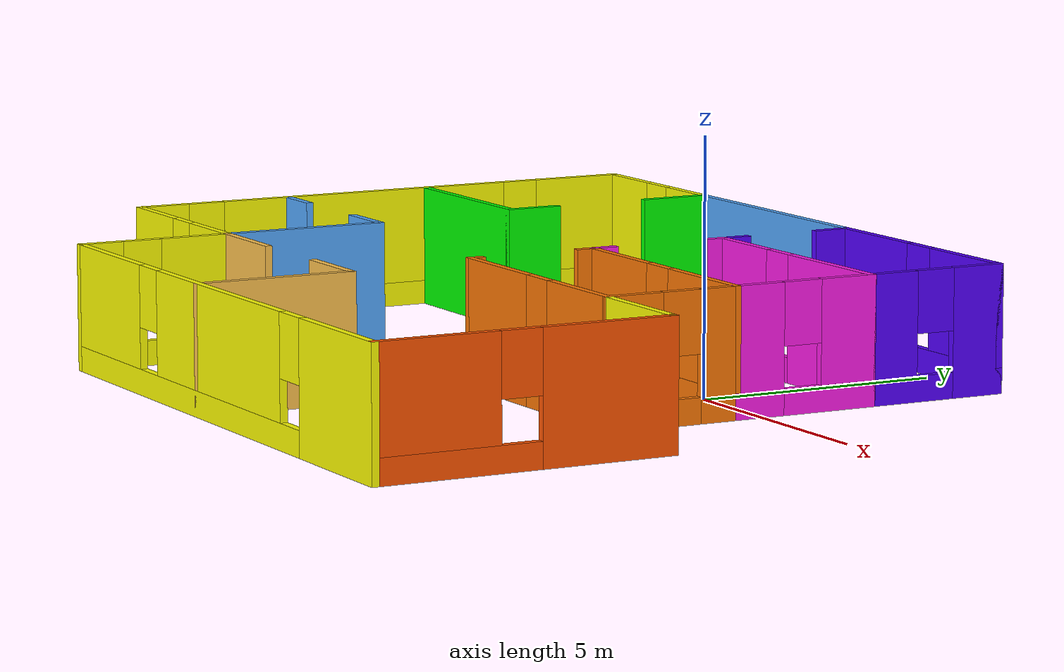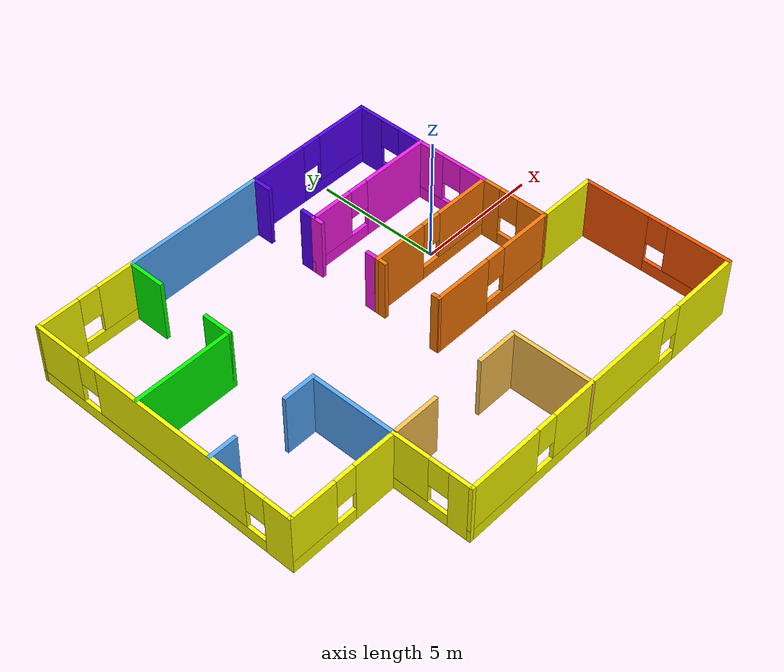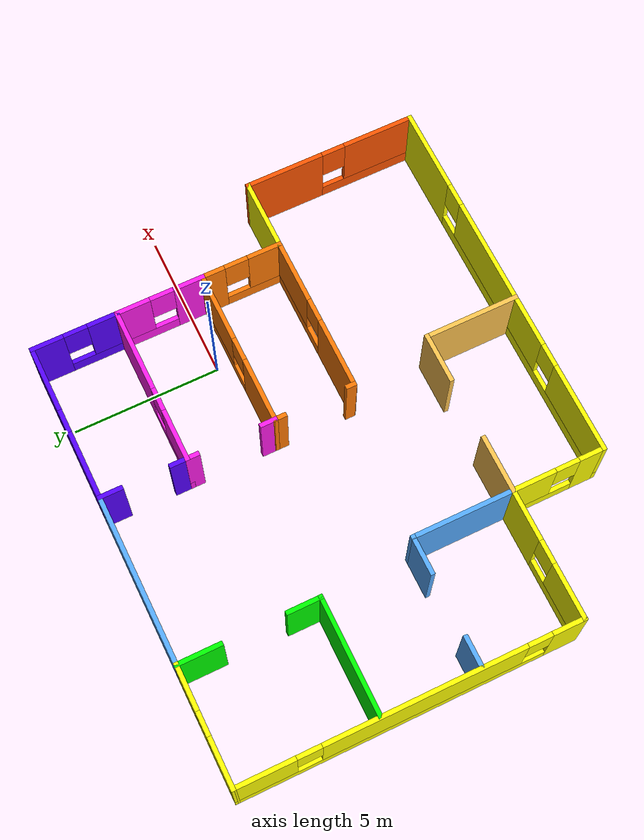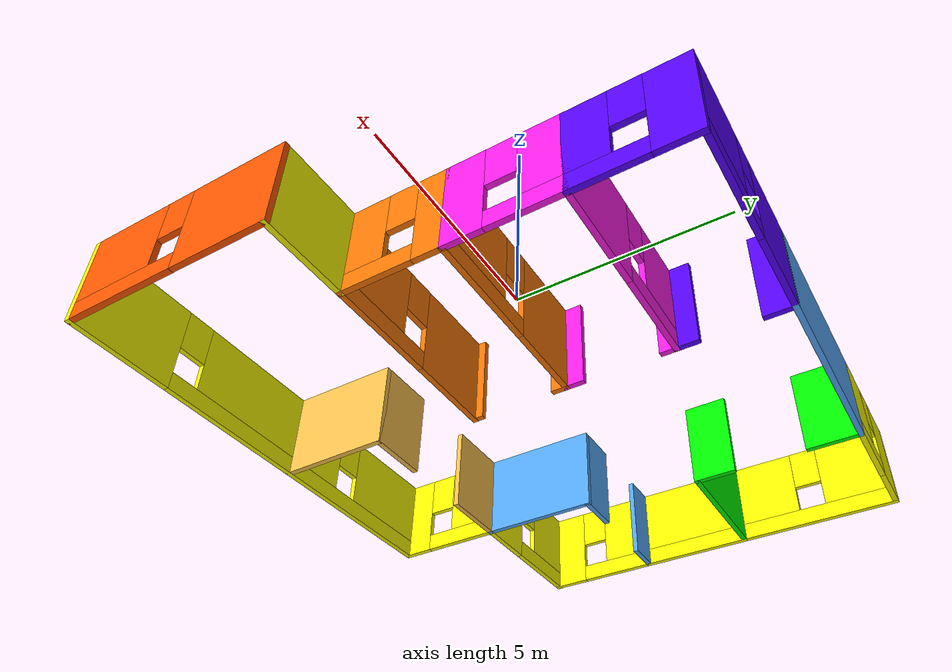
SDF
<?xml version='1.0'?>
<sdf version='1.6'>
  <model name='mybuilding'>
    <pose frame=''>-4.18089 -1.93999 0 0 -0 0</pose>
    <link name='Wall_10'>
      <pose frame=''>2.17523 -7.15011 0 0 -0 3.14159</pose>
      <visual name='Wall_10_Visual_0'>
        <pose frame=''>-5.06038 0 1.25 0 -0 0</pose>
        <geometry>
          <box>
            <size>2.87924 0.15 2.5</size>
          </box>
        </geometry>
        <material>
          <script>
            <uri>file://media/materials/scripts/gazebo.material</uri>
            <name>Gazebo/Grey</name>
          </script>
          <ambient>1 1 0 1</ambient>
        </material>
      </visual>
      <collision name='Wall_10_Collision_0'>
        <geometry>
          <box>
            <size>2.87924 0.15 2.5</size>
          </box>
        </geometry>
        <pose frame=''>-5.06038 0 1.25 0 -0 0</pose>
      </collision>
      <visual name='Wall_10_Visual_1'>
        <pose frame=''>1.43962 0 0.25 0 -0 0</pose>
        <geometry>
          <box>
            <size>10.1208 0.15 0.5</size>
          </box>
        </geometry>
        <material>
          <script>
            <uri>file://media/materials/scripts/gazebo.material</uri>
            <name>Gazebo/Grey</name>
          </script>
          <ambient>1 1 0 1</ambient>
        </material>
      </visual>
      <collision name='Wall_10_Collision_1'>
        <geometry>
          <box>
            <size>10.1208 0.15 0.5</size>
          </box>
        </geometry>
        <pose frame=''>1.43962 0 0.25 0 -0 0</pose>
      </collision>
      <visual name='Wall_10_Visual_2'>
        <pose frame=''>-0.096927 0 1.5 0 -0 0</pose>
        <geometry>
          <box>
            <size>5.44766 0.15 2</size>
          </box>
        </geometry>
        <material>
          <script>
            <uri>file://media/materials/scripts/gazebo.material</uri>
            <name>Gazebo/Grey</name>
          </script>
          <ambient>1 1 0 1</ambient>
        </material>
      </visual>
      <collision name='Wall_10_Collision_2'>
        <geometry>
          <box>
            <size>5.44766 0.15 2</size>
          </box>
        </geometry>
        <pose frame=''>-0.096927 0 1.5 0 -0 0</pose>
      </collision>
      <visual name='Wall_10_Visual_3'>
        <pose frame=''>4.96345 0 1.5 0 -0 0</pose>
        <geometry>
          <box>
            <size>3.07309 0.15 2</size>
          </box>
        </geometry>
        <material>
          <script>
            <uri>file://media/materials/scripts/gazebo.material</uri>
            <name>Gazebo/Grey</name>
          </script>
          <ambient>1 1 0 1</ambient>
        </material>
      </visual>
      <collision name='Wall_10_Collision_3'>
        <geometry>
          <box>
            <size>3.07309 0.15 2</size>
          </box>
        </geometry>
        <pose frame=''>4.96345 0 1.5 0 -0 0</pose>
      </collision>
      <visual name='Wall_10_Visual_4'>
        <pose frame=''>-3.22076 0 1.9 0 -0 0</pose>
        <geometry>
          <box>
            <size>0.8 0.15 1.2</size>
          </box>
        </geometry>
        <material>
          <script>
            <uri>file://media/materials/scripts/gazebo.material</uri>
            <name>Gazebo/Grey</name>
          </script>
          <ambient>1 1 0 1</ambient>
        </material>
      </visual>
      <collision name='Wall_10_Collision_4'>
        <geometry>
          <box>
            <size>0.8 0.15 1.2</size>
          </box>
        </geometry>
        <pose frame=''>-3.22076 0 1.9 0 -0 0</pose>
      </collision>
      <visual name='Wall_10_Visual_5'>
        <pose frame=''>3.02691 0 1.9 0 -0 0</pose>
        <geometry>
          <box>
            <size>0.8 0.15 1.2</size>
          </box>
        </geometry>
        <material>
          <script>
            <uri>file://media/materials/scripts/gazebo.material</uri>
            <name>Gazebo/Grey</name>
          </script>
          <ambient>1 1 0 1</ambient>
        </material>
      </visual>
      <collision name='Wall_10_Collision_5'>
        <geometry>
          <box>
            <size>0.8 0.15 1.2</size>
          </box>
        </geometry>
        <pose frame=''>3.02691 0 1.9 0 -0 0</pose>
      </collision>
    </link>
    <link name='Wall_11'>
      <pose frame=''>-4.24977 -5.60011 0 0 -0 1.5708</pose>
      <visual name='Wall_11_Visual_0'>
        <pose frame=''>-1.16435 0 1.25 0 -0 0</pose>
        <geometry>
          <box>
            <size>0.921292 0.15 2.5</size>
          </box>
        </geometry>
        <material>
          <script>
            <uri>file://media/materials/scripts/gazebo.material</uri>
            <name>Gazebo/Grey</name>
          </script>
          <ambient>1 1 0 1</ambient>
        </material>
      </visual>
      <collision name='Wall_11_Collision_0'>
        <geometry>
          <box>
            <size>0.921292 0.15 2.5</size>
          </box>
        </geometry>
        <pose frame=''>-1.16435 0 1.25 0 -0 0</pose>
      </collision>
      <visual name='Wall_11_Visual_1'>
        <pose frame=''>0.460646 0 0.25 0 -0 0</pose>
        <geometry>
          <box>
            <size>2.32871 0.15 0.5</size>
          </box>
        </geometry>
        <material>
          <script>
            <uri>file://media/materials/scripts/gazebo.material</uri>
            <name>Gazebo/Grey</name>
          </script>
          <ambient>1 1 0 1</ambient>
        </material>
      </visual>
      <collision name='Wall_11_Collision_1'>
        <geometry>
          <box>
            <size>2.32871 0.15 0.5</size>
          </box>
        </geometry>
        <pose frame=''>0.460646 0 0.25 0 -0 0</pose>
      </collision>
      <visual name='Wall_11_Visual_2'>
        <pose frame=''>0.860646 0 1.5 0 -0 0</pose>
        <geometry>
          <box>
            <size>1.52871 0.15 2</size>
          </box>
        </geometry>
        <material>
          <script>
            <uri>file://media/materials/scripts/gazebo.material</uri>
            <name>Gazebo/Grey</name>
          </script>
          <ambient>1 1 0 1</ambient>
        </material>
      </visual>
      <collision name='Wall_11_Collision_2'>
        <geometry>
          <box>
            <size>1.52871 0.15 2</size>
          </box>
        </geometry>
        <pose frame=''>0.860646 0 1.5 0 -0 0</pose>
      </collision>
      <visual name='Wall_11_Visual_3'>
        <pose frame=''>-0.303708 0 1.9 0 -0 0</pose>
        <geometry>
          <box>
            <size>0.8 0.15 1.2</size>
          </box>
        </geometry>
        <material>
          <script>
            <uri>file://media/materials/scripts/gazebo.material</uri>
            <name>Gazebo/Grey</name>
          </script>
          <ambient>1 1 0 1</ambient>
        </material>
      </visual>
      <collision name='Wall_11_Collision_3'>
        <geometry>
          <box>
            <size>0.8 0.15 1.2</size>
          </box>
        </geometry>
        <pose frame=''>-0.303708 0 1.9 0 -0 0</pose>
      </collision>
    </link>
    <link name='Wall_12'>
      <pose frame=''>-6.42494 -4.05006 0 0 -0 3.14157</pose>
      <visual name='Wall_12_Visual_0'>
        <pose frame=''>-1.3501 0 1.25 0 -0 0</pose>
        <geometry>
          <box>
            <size>1.7998 0.15 2.5</size>
          </box>
        </geometry>
        <material>
          <script>
            <uri>file://media/materials/scripts/gazebo.material</uri>
            <name>Gazebo/Grey</name>
          </script>
          <ambient>1 1 0 1</ambient>
        </material>
      </visual>
      <collision name='Wall_12_Collision_0'>
        <geometry>
          <box>
            <size>1.7998 0.15 2.5</size>
          </box>
        </geometry>
        <pose frame=''>-1.3501 0 1.25 0 -0 0</pose>
      </collision>
      <visual name='Wall_12_Visual_1'>
        <pose frame=''>0.8999 0 0.25 0 -0 0</pose>
        <geometry>
          <box>
            <size>2.7002 0.15 0.5</size>
          </box>
        </geometry>
        <material>
          <script>
            <uri>file://media/materials/scripts/gazebo.material</uri>
            <name>Gazebo/Grey</name>
          </script>
          <ambient>1 1 0 1</ambient>
        </material>
      </visual>
      <collision name='Wall_12_Collision_1'>
        <geometry>
          <box>
            <size>2.7002 0.15 0.5</size>
          </box>
        </geometry>
        <pose frame=''>0.8999 0 0.25 0 -0 0</pose>
      </collision>
      <visual name='Wall_12_Visual_2'>
        <pose frame=''>1.2999 0 1.5 0 -0 0</pose>
        <geometry>
          <box>
            <size>1.9002 0.15 2</size>
          </box>
        </geometry>
        <material>
          <script>
            <uri>file://media/materials/scripts/gazebo.material</uri>
            <name>Gazebo/Grey</name>
          </script>
          <ambient>1 1 0 1</ambient>
        </material>
      </visual>
      <collision name='Wall_12_Collision_2'>
        <geometry>
          <box>
            <size>1.9002 0.15 2</size>
          </box>
        </geometry>
        <pose frame=''>1.2999 0 1.5 0 -0 0</pose>
      </collision>
      <visual name='Wall_12_Visual_3'>
        <pose frame=''>-0.0502 0 1.9 0 -0 0</pose>
        <geometry>
          <box>
            <size>0.8 0.15 1.2</size>
          </box>
        </geometry>
        <material>
          <script>
            <uri>file://media/materials/scripts/gazebo.material</uri>
            <name>Gazebo/Grey</name>
          </script>
          <ambient>1 1 0 1</ambient>
        </material>
      </visual>
      <collision name='Wall_12_Collision_3'>
        <geometry>
          <box>
            <size>0.8 0.15 1.2</size>
          </box>
        </geometry>
        <pose frame=''>-0.0502 0 1.9 0 -0 0</pose>
      </collision>
    </link>
    <link name='Wall_15'>
      <pose frame=''>-8.60011 1.55 0 0 -0 1.5708</pose>
      <visual name='Wall_15_Visual_0'>
        <pose frame=''>-5.11027 0 1.25 0 -0 0</pose>
        <geometry>
          <box>
            <size>1.12946 0.15 2.5</size>
          </box>
        </geometry>
        <material>
          <script>
            <uri>file://media/materials/scripts/gazebo.material</uri>
            <name>Gazebo/Grey</name>
          </script>
          <ambient>1 1 0 1</ambient>
        </material>
      </visual>
      <collision name='Wall_15_Collision_0'>
        <geometry>
          <box>
            <size>1.12946 0.15 2.5</size>
          </box>
        </geometry>
        <pose frame=''>-5.11027 0 1.25 0 -0 0</pose>
      </collision>
      <visual name='Wall_15_Visual_1'>
        <pose frame=''>0.564732 0 0.25 0 -0 0</pose>
        <geometry>
          <box>
            <size>10.2205 0.15 0.5</size>
          </box>
        </geometry>
        <material>
          <script>
            <uri>file://media/materials/scripts/gazebo.material</uri>
            <name>Gazebo/Grey</name>
          </script>
          <ambient>1 1 0 1</ambient>
        </material>
      </visual>
      <collision name='Wall_15_Collision_1'>
        <geometry>
          <box>
            <size>10.2205 0.15 0.5</size>
          </box>
        </geometry>
        <pose frame=''>0.564732 0 0.25 0 -0 0</pose>
      </collision>
      <visual name='Wall_15_Visual_2'>
        <pose frame=''>-0.451765 0 1.5 0 -0 0</pose>
        <geometry>
          <box>
            <size>6.58754 0.15 2</size>
          </box>
        </geometry>
        <material>
          <script>
            <uri>file://media/materials/scripts/gazebo.material</uri>
            <name>Gazebo/Grey</name>
          </script>
          <ambient>1 1 0 1</ambient>
        </material>
      </visual>
      <collision name='Wall_15_Collision_2'>
        <geometry>
          <box>
            <size>6.58754 0.15 2</size>
          </box>
        </geometry>
        <pose frame=''>-0.451765 0 1.5 0 -0 0</pose>
      </collision>
      <visual name='Wall_15_Visual_3'>
        <pose frame=''>4.6585 0 1.5 0 -0 0</pose>
        <geometry>
          <box>
            <size>2.033 0.15 2</size>
          </box>
        </geometry>
        <material>
          <script>
            <uri>file://media/materials/scripts/gazebo.material</uri>
            <name>Gazebo/Grey</name>
          </script>
          <ambient>1 1 0 1</ambient>
        </material>
      </visual>
      <collision name='Wall_15_Collision_3'>
        <geometry>
          <box>
            <size>2.033 0.15 2</size>
          </box>
        </geometry>
        <pose frame=''>4.6585 0 1.5 0 -0 0</pose>
      </collision>
      <visual name='Wall_15_Visual_4'>
        <pose frame=''>-4.14553 0 1.9 0 -0 0</pose>
        <geometry>
          <box>
            <size>0.8 0.15 1.2</size>
          </box>
        </geometry>
        <material>
          <script>
            <uri>file://media/materials/scripts/gazebo.material</uri>
            <name>Gazebo/Grey</name>
          </script>
          <ambient>1 1 0 1</ambient>
        </material>
      </visual>
      <collision name='Wall_15_Collision_4'>
        <geometry>
          <box>
            <size>0.8 0.15 1.2</size>
          </box>
        </geometry>
        <pose frame=''>-4.14553 0 1.9 0 -0 0</pose>
      </collision>
      <visual name='Wall_15_Visual_5'>
        <pose frame=''>3.242 0 1.9 0 -0 0</pose>
        <geometry>
          <box>
            <size>0.8 0.15 1.2</size>
          </box>
        </geometry>
        <material>
          <script>
            <uri>file://media/materials/scripts/gazebo.material</uri>
            <name>Gazebo/Grey</name>
          </script>
          <ambient>1 1 0 1</ambient>
        </material>
      </visual>
      <collision name='Wall_15_Collision_5'>
        <geometry>
          <box>
            <size>0.8 0.15 1.2</size>
          </box>
        </geometry>
        <pose frame=''>3.242 0 1.9 0 -0 0</pose>
      </collision>
    </link>
    <link name='Wall_19'>
      <pose frame=''>3.57489 4.3 0 0 -0 3.14159</pose>
      <visual name='Wall_19_Visual_0'>
        <pose frame=''>-1.30873 0 1.25 0 -0 0</pose>
        <geometry>
          <box>
            <size>2.88253 0.15 2.5</size>
          </box>
        </geometry>
        <material>
          <script>
            <uri>file://media/materials/scripts/gazebo.material</uri>
            <name>Gazebo/Grey</name>
          </script>
          <ambient>1 0.109804 0.913725 1</ambient>
        </material>
      </visual>
      <collision name='Wall_19_Collision_0'>
        <geometry>
          <box>
            <size>2.88253 0.15 2.5</size>
          </box>
        </geometry>
        <pose frame=''>-1.30873 0 1.25 0 -0 0</pose>
      </collision>
      <visual name='Wall_19_Visual_1'>
        <pose frame=''>1.44127 0 0.25 0 -0 0</pose>
        <geometry>
          <box>
            <size>2.61747 0.15 0.5</size>
          </box>
        </geometry>
        <material>
          <script>
            <uri>file://media/materials/scripts/gazebo.material</uri>
            <name>Gazebo/Grey</name>
          </script>
          <ambient>1 0.109804 0.913725 1</ambient>
        </material>
      </visual>
      <collision name='Wall_19_Collision_1'>
        <geometry>
          <box>
            <size>2.61747 0.15 0.5</size>
          </box>
        </geometry>
        <pose frame=''>1.44127 0 0.25 0 -0 0</pose>
      </collision>
      <visual name='Wall_19_Visual_2'>
        <pose frame=''>1.84126 0 1.5 0 -0 0</pose>
        <geometry>
          <box>
            <size>1.81747 0.15 2</size>
          </box>
        </geometry>
        <material>
          <script>
            <uri>file://media/materials/scripts/gazebo.material</uri>
            <name>Gazebo/Grey</name>
          </script>
          <ambient>1 0.109804 0.913725 1</ambient>
        </material>
      </visual>
      <collision name='Wall_19_Collision_2'>
        <geometry>
          <box>
            <size>1.81747 0.15 2</size>
          </box>
        </geometry>
        <pose frame=''>1.84126 0 1.5 0 -0 0</pose>
      </collision>
      <visual name='Wall_19_Visual_3'>
        <pose frame=''>0.53253 0 1.9 0 -0 0</pose>
        <geometry>
          <box>
            <size>0.8 0.15 1.2</size>
          </box>
        </geometry>
        <material>
          <script>
            <uri>file://media/materials/scripts/gazebo.material</uri>
            <name>Gazebo/Grey</name>
          </script>
          <ambient>1 0.109804 0.913725 1</ambient>
        </material>
      </visual>
      <collision name='Wall_19_Collision_3'>
        <geometry>
          <box>
            <size>0.8 0.15 1.2</size>
          </box>
        </geometry>
        <pose frame=''>0.53253 0 1.9 0 -0 0</pose>
      </collision>
    </link>
    <link name='Wall_21'>
      <pose frame=''>3.57523 -1.30011 0 0 -0 0</pose>
      <visual name='Wall_21_Visual_0'>
        <pose frame=''>-1.51945 0 1.25 0 -0 0</pose>
        <geometry>
          <box>
            <size>2.4611 0.15 2.5</size>
          </box>
        </geometry>
        <material>
          <script>
            <uri>file://media/materials/scripts/gazebo.material</uri>
            <name>Gazebo/Grey</name>
          </script>
          <ambient>0.996078 0.47451 0.0196078 1</ambient>
        </material>
      </visual>
      <collision name='Wall_21_Collision_0'>
        <geometry>
          <box>
            <size>2.4611 0.15 2.5</size>
          </box>
        </geometry>
        <pose frame=''>-1.51945 0 1.25 0 -0 0</pose>
      </collision>
      <visual name='Wall_21_Visual_1'>
        <pose frame=''>1.23055 0 0.25 0 -0 0</pose>
        <geometry>
          <box>
            <size>3.0389 0.15 0.5</size>
          </box>
        </geometry>
        <material>
          <script>
            <uri>file://media/materials/scripts/gazebo.material</uri>
            <name>Gazebo/Grey</name>
          </script>
          <ambient>0.996078 0.47451 0.0196078 1</ambient>
        </material>
      </visual>
      <collision name='Wall_21_Collision_1'>
        <geometry>
          <box>
            <size>3.0389 0.15 0.5</size>
          </box>
        </geometry>
        <pose frame=''>1.23055 0 0.25 0 -0 0</pose>
      </collision>
      <visual name='Wall_21_Visual_2'>
        <pose frame=''>1.63055 0 1.5 0 -0 0</pose>
        <geometry>
          <box>
            <size>2.23889 0.15 2</size>
          </box>
        </geometry>
        <material>
          <script>
            <uri>file://media/materials/scripts/gazebo.material</uri>
            <name>Gazebo/Grey</name>
          </script>
          <ambient>0.996078 0.47451 0.0196078 1</ambient>
        </material>
      </visual>
      <collision name='Wall_21_Collision_2'>
        <geometry>
          <box>
            <size>2.23889 0.15 2</size>
          </box>
        </geometry>
        <pose frame=''>1.63055 0 1.5 0 -0 0</pose>
      </collision>
      <visual name='Wall_21_Visual_3'>
        <pose frame=''>0.111105 0 1.9 0 -0 0</pose>
        <geometry>
          <box>
            <size>0.8 0.15 1.2</size>
          </box>
        </geometry>
        <material>
          <script>
            <uri>file://media/materials/scripts/gazebo.material</uri>
            <name>Gazebo/Grey</name>
          </script>
          <ambient>0.996078 0.47451 0.0196078 1</ambient>
        </material>
      </visual>
      <collision name='Wall_21_Collision_3'>
        <geometry>
          <box>
            <size>0.8 0.15 1.2</size>
          </box>
        </geometry>
        <pose frame=''>0.111105 0 1.9 0 -0 0</pose>
      </collision>
    </link>
    <link name='Wall_23'>
      <pose frame=''>3.57489 1.37699 0 0 -0 0</pose>
      <visual name='Wall_23_Visual_0'>
        <pose frame=''>-1.61518 0 1.25 0 -0 0</pose>
        <geometry>
          <box>
            <size>2.26965 0.15 2.5</size>
          </box>
        </geometry>
        <material>
          <script>
            <uri>file://media/materials/scripts/gazebo.material</uri>
            <name>Gazebo/Grey</name>
          </script>
          <ambient>0.996078 0.47451 0.0196078 1</ambient>
        </material>
      </visual>
      <collision name='Wall_23_Collision_0'>
        <geometry>
          <box>
            <size>2.26965 0.15 2.5</size>
          </box>
        </geometry>
        <pose frame=''>-1.61518 0 1.25 0 -0 0</pose>
      </collision>
      <visual name='Wall_23_Visual_1'>
        <pose frame=''>1.13482 0 0.25 0 -0 0</pose>
        <geometry>
          <box>
            <size>3.23035 0.15 0.5</size>
          </box>
        </geometry>
        <material>
          <script>
            <uri>file://media/materials/scripts/gazebo.material</uri>
            <name>Gazebo/Grey</name>
          </script>
          <ambient>0.996078 0.47451 0.0196078 1</ambient>
        </material>
      </visual>
      <collision name='Wall_23_Collision_1'>
        <geometry>
          <box>
            <size>3.23035 0.15 0.5</size>
          </box>
        </geometry>
        <pose frame=''>1.13482 0 0.25 0 -0 0</pose>
      </collision>
      <visual name='Wall_23_Visual_2'>
        <pose frame=''>1.53483 0 1.5 0 -0 0</pose>
        <geometry>
          <box>
            <size>2.43035 0.15 2</size>
          </box>
        </geometry>
        <material>
          <script>
            <uri>file://media/materials/scripts/gazebo.material</uri>
            <name>Gazebo/Grey</name>
          </script>
          <ambient>0.996078 0.47451 0.0196078 1</ambient>
        </material>
      </visual>
      <collision name='Wall_23_Collision_2'>
        <geometry>
          <box>
            <size>2.43035 0.15 2</size>
          </box>
        </geometry>
        <pose frame=''>1.53483 0 1.5 0 -0 0</pose>
      </collision>
      <visual name='Wall_23_Visual_3'>
        <pose frame=''>-0.080349 0 1.9 0 -0 0</pose>
        <geometry>
          <box>
            <size>0.8 0.15 1.2</size>
          </box>
        </geometry>
        <material>
          <script>
            <uri>file://media/materials/scripts/gazebo.material</uri>
            <name>Gazebo/Grey</name>
          </script>
          <ambient>0.996078 0.47451 0.0196078 1</ambient>
        </material>
      </visual>
      <collision name='Wall_23_Collision_3'>
        <geometry>
          <box>
            <size>0.8 0.15 1.2</size>
          </box>
        </geometry>
        <pose frame=''>-0.080349 0 1.9 0 -0 0</pose>
      </collision>
    </link>
    <link name='Wall_25'>
      <collision name='Wall_25_Collision'>
        <geometry>
          <box>
            <size>3.5 0.15 2.5</size>
          </box>
        </geometry>
        <pose frame=''>0 0 1.25 0 -0 0</pose>
      </collision>
      <visual name='Wall_25_Visual'>
        <pose frame=''>0 0 1.25 0 -0 0</pose>
        <geometry>
          <box>
            <size>3.5 0.15 2.5</size>
          </box>
        </geometry>
        <material>
          <script>
            <uri>file://media/materials/scripts/gazebo.material</uri>
            <name>Gazebo/Grey</name>
          </script>
          <ambient>0.333333 0.666667 1 1</ambient>
        </material>
      </visual>
      <pose frame=''>-4.24977 -2.37511 0 0 -0 1.5708</pose>
    </link>
    <link name='Wall_26'>
      <pose frame=''>-6.42478 -0.700112 0 0 -0 3.14159</pose>
      <visual name='Wall_26_Visual_0'>
        <pose frame=''>-1.5717 0 1.25 0 -0 0</pose>
        <geometry>
          <box>
            <size>1.35659 0.15 2.5</size>
          </box>
        </geometry>
        <material>
          <script>
            <uri>file://media/materials/scripts/gazebo.material</uri>
            <name>Gazebo/Grey</name>
          </script>
          <ambient>0.333333 0.666667 1 1</ambient>
        </material>
      </visual>
      <collision name='Wall_26_Collision_0'>
        <geometry>
          <box>
            <size>1.35659 0.15 2.5</size>
          </box>
        </geometry>
        <pose frame=''>-1.5717 0 1.25 0 -0 0</pose>
      </collision>
      <visual name='Wall_26_Visual_1'>
        <pose frame=''>1.6783 0 1.25 0 -0 0</pose>
        <geometry>
          <box>
            <size>1.14341 0.15 2.5</size>
          </box>
        </geometry>
        <material>
          <script>
            <uri>file://media/materials/scripts/gazebo.material</uri>
            <name>Gazebo/Grey</name>
          </script>
          <ambient>0.333333 0.666667 1 1</ambient>
        </material>
      </visual>
      <collision name='Wall_26_Collision_1'>
        <geometry>
          <box>
            <size>1.14341 0.15 2.5</size>
          </box>
        </geometry>
        <pose frame=''>1.6783 0 1.25 0 -0 0</pose>
      </collision>
    </link>
    <link name='Wall_32'>
      <collision name='Wall_32_Collision'>
        <geometry>
          <box>
            <size>4 0.15 2.5</size>
          </box>
        </geometry>
        <pose frame=''>0 0 1.25 0 -0 0</pose>
      </collision>
      <visual name='Wall_32_Visual'>
        <pose frame=''>0 0 1.25 0 -0 0</pose>
        <geometry>
          <box>
            <size>4 0.15 2.5</size>
          </box>
        </geometry>
        <material>
          <script>
            <uri>file://media/materials/scripts/gazebo.material</uri>
            <name>Gazebo/Grey</name>
          </script>
          <ambient>0 1 0 1</ambient>
        </material>
      </visual>
      <pose frame=''>-6.63784 2.54388 0 0 -0 0</pose>
    </link>
    <link name='Wall_39'>
      <pose frame=''>-4.71284 4.84388 0 0 -0 1.5708</pose>
      <visual name='Wall_39_Visual_0'>
        <pose frame=''>-1.77148 0 1.25 0 -0 0</pose>
        <geometry>
          <box>
            <size>1.20704 0.15 2.5</size>
          </box>
        </geometry>
        <material>
          <script>
            <uri>file://media/materials/scripts/gazebo.material</uri>
            <name>Gazebo/Grey</name>
          </script>
          <ambient>0 1 0 1</ambient>
        </material>
      </visual>
      <collision name='Wall_39_Collision_0'>
        <geometry>
          <box>
            <size>1.20704 0.15 2.5</size>
          </box>
        </geometry>
        <pose frame=''>-1.77148 0 1.25 0 -0 0</pose>
      </collision>
      <visual name='Wall_39_Visual_1'>
        <pose frame=''>1.60352 0 1.25 0 -0 0</pose>
        <geometry>
          <box>
            <size>1.54296 0.15 2.5</size>
          </box>
        </geometry>
        <material>
          <script>
            <uri>file://media/materials/scripts/gazebo.material</uri>
            <name>Gazebo/Grey</name>
          </script>
          <ambient>0 1 0 1</ambient>
        </material>
      </visual>
      <collision name='Wall_39_Collision_1'>
        <geometry>
          <box>
            <size>1.54296 0.15 2.5</size>
          </box>
        </geometry>
        <pose frame=''>1.60352 0 1.25 0 -0 0</pose>
      </collision>
    </link>
    <link name='Wall_41'>
      <pose frame=''>0.899892 5.72499 0 0 -0 1.5708</pose>
      <visual name='Wall_41_Visual_0'>
        <pose frame=''>-1.16676 0 1.25 0 -0 0</pose>
        <geometry>
          <box>
            <size>0.666482 0.15 2.5</size>
          </box>
        </geometry>
        <material>
          <script>
            <uri>file://media/materials/scripts/gazebo.material</uri>
            <name>Gazebo/Grey</name>
          </script>
          <ambient>0.333333 0 1 1</ambient>
        </material>
      </visual>
      <collision name='Wall_41_Collision_0'>
        <geometry>
          <box>
            <size>0.666482 0.15 2.5</size>
          </box>
        </geometry>
        <pose frame=''>-1.16676 0 1.25 0 -0 0</pose>
      </collision>
      <visual name='Wall_41_Visual_1'>
        <pose frame=''>1.08324 0 1.25 0 -0 0</pose>
        <geometry>
          <box>
            <size>0.833518 0.15 2.5</size>
          </box>
        </geometry>
        <material>
          <script>
            <uri>file://media/materials/scripts/gazebo.material</uri>
            <name>Gazebo/Grey</name>
          </script>
          <ambient>0.333333 0 1 1</ambient>
        </material>
      </visual>
      <collision name='Wall_41_Collision_1'>
        <geometry>
          <box>
            <size>0.833518 0.15 2.5</size>
          </box>
        </geometry>
        <pose frame=''>1.08324 0 1.25 0 -0 0</pose>
      </collision>
    </link>
    <link name='Wall_47'>
      <pose frame=''>-6.65647 7.14694 0 0 0 -0.001573</pose>
      <visual name='Wall_47_Visual_0'>
        <pose frame=''>-1.17383 0 1.25 0 -0 0</pose>
        <geometry>
          <box>
            <size>1.68962 0.15 2.5</size>
          </box>
        </geometry>
        <material>
          <script>
            <uri>file://media/materials/scripts/gazebo.material</uri>
            <name>Gazebo/Grey</name>
          </script>
          <ambient>1 1 0 1</ambient>
        </material>
      </visual>
      <collision name='Wall_47_Collision_0'>
        <geometry>
          <box>
            <size>1.68962 0.15 2.5</size>
          </box>
        </geometry>
        <pose frame=''>-1.17383 0 1.25 0 -0 0</pose>
      </collision>
      <visual name='Wall_47_Visual_1'>
        <pose frame=''>0.844811 0 0.25 0 -0 0</pose>
        <geometry>
          <box>
            <size>2.34766 0.15 0.5</size>
          </box>
        </geometry>
        <material>
          <script>
            <uri>file://media/materials/scripts/gazebo.material</uri>
            <name>Gazebo/Grey</name>
          </script>
          <ambient>1 1 0 1</ambient>
        </material>
      </visual>
      <collision name='Wall_47_Collision_1'>
        <geometry>
          <box>
            <size>2.34766 0.15 0.5</size>
          </box>
        </geometry>
        <pose frame=''>0.844811 0 0.25 0 -0 0</pose>
      </collision>
      <visual name='Wall_47_Visual_2'>
        <pose frame=''>1.24481 0 1.5 0 -0 0</pose>
        <geometry>
          <box>
            <size>1.54766 0.15 2</size>
          </box>
        </geometry>
        <material>
          <script>
            <uri>file://media/materials/scripts/gazebo.material</uri>
            <name>Gazebo/Grey</name>
          </script>
          <ambient>1 1 0 1</ambient>
        </material>
      </visual>
      <collision name='Wall_47_Collision_2'>
        <geometry>
          <box>
            <size>1.54766 0.15 2</size>
          </box>
        </geometry>
        <pose frame=''>1.24481 0 1.5 0 -0 0</pose>
      </collision>
      <visual name='Wall_47_Visual_3'>
        <pose frame=''>0.070983 0 1.9 0 -0 0</pose>
        <geometry>
          <box>
            <size>0.8 0.15 1.2</size>
          </box>
        </geometry>
        <material>
          <script>
            <uri>file://media/materials/scripts/gazebo.material</uri>
            <name>Gazebo/Grey</name>
          </script>
          <ambient>1 1 0 1</ambient>
        </material>
      </visual>
      <collision name='Wall_47_Collision_3'>
        <geometry>
          <box>
            <size>0.8 0.15 1.2</size>
          </box>
        </geometry>
        <pose frame=''>0.070983 0 1.9 0 -0 0</pose>
      </collision>
    </link>
    <link name='Wall_48'>
      <collision name='Wall_48_Collision'>
        <geometry>
          <box>
            <size>5.76306 0.15 2.5</size>
          </box>
        </geometry>
        <pose frame=''>0 0 1.25 0 -0 0</pose>
      </collision>
      <visual name='Wall_48_Visual'>
        <pose frame=''>0 0 1.25 0 -0 0</pose>
        <geometry>
          <box>
            <size>5.76306 0.15 2.5</size>
          </box>
        </geometry>
        <material>
          <script>
            <uri>file://media/materials/scripts/gazebo.material</uri>
            <name>Gazebo/Grey</name>
          </script>
          <ambient>0.333333 0.666667 1 1</ambient>
        </material>
      </visual>
      <pose frame=''>-1.90647 7.14694 0 0 -0 0.001089</pose>
    </link>
    <link name='Wall_52'>
      <pose frame=''>3.57489 7.14999 0 0 -0 0</pose>
      <visual name='Wall_52_Visual_0'>
        <pose frame=''>-1.55443 0 1.25 0 -0 0</pose>
        <geometry>
          <box>
            <size>2.39113 0.15 2.5</size>
          </box>
        </geometry>
        <material>
          <script>
            <uri>file://media/materials/scripts/gazebo.material</uri>
            <name>Gazebo/Grey</name>
          </script>
          <ambient>0.333333 0 1 1</ambient>
        </material>
      </visual>
      <collision name='Wall_52_Collision_0'>
        <geometry>
          <box>
            <size>2.39113 0.15 2.5</size>
          </box>
        </geometry>
        <pose frame=''>-1.55443 0 1.25 0 -0 0</pose>
      </collision>
      <visual name='Wall_52_Visual_1'>
        <pose frame=''>1.19557 0 0.25 0 -0 0</pose>
        <geometry>
          <box>
            <size>3.10887 0.15 0.5</size>
          </box>
        </geometry>
        <material>
          <script>
            <uri>file://media/materials/scripts/gazebo.material</uri>
            <name>Gazebo/Grey</name>
          </script>
          <ambient>0.333333 0 1 1</ambient>
        </material>
      </visual>
      <collision name='Wall_52_Collision_1'>
        <geometry>
          <box>
            <size>3.10887 0.15 0.5</size>
          </box>
        </geometry>
        <pose frame=''>1.19557 0 0.25 0 -0 0</pose>
      </collision>
      <visual name='Wall_52_Visual_2'>
        <pose frame=''>1.59557 0 1.5 0 -0 0</pose>
        <geometry>
          <box>
            <size>2.30887 0.15 2</size>
          </box>
        </geometry>
        <material>
          <script>
            <uri>file://media/materials/scripts/gazebo.material</uri>
            <name>Gazebo/Grey</name>
          </script>
          <ambient>0.333333 0 1 1</ambient>
        </material>
      </visual>
      <collision name='Wall_52_Collision_2'>
        <geometry>
          <box>
            <size>2.30887 0.15 2</size>
          </box>
        </geometry>
        <pose frame=''>1.59557 0 1.5 0 -0 0</pose>
      </collision>
      <visual name='Wall_52_Visual_3'>
        <pose frame=''>0.041132 0 1.9 0 -0 0</pose>
        <geometry>
          <box>
            <size>0.8 0.15 1.2</size>
          </box>
        </geometry>
        <material>
          <script>
            <uri>file://media/materials/scripts/gazebo.material</uri>
            <name>Gazebo/Grey</name>
          </script>
          <ambient>0.333333 0 1 1</ambient>
        </material>
      </visual>
      <collision name='Wall_52_Collision_3'>
        <geometry>
          <box>
            <size>0.8 0.15 1.2</size>
          </box>
        </geometry>
        <pose frame=''>0.041132 0 1.9 0 -0 0</pose>
      </collision>
    </link>
    <link name='Wall_54'>
      <pose frame=''>6.24989 5.72499 0 0 0 -1.5708</pose>
      <visual name='Wall_54_Visual_0'>
        <pose frame=''>-0.940826 0 1.25 0 -0 0</pose>
        <geometry>
          <box>
            <size>1.11835 0.15 2.5</size>
          </box>
        </geometry>
        <material>
          <script>
            <uri>file://media/materials/scripts/gazebo.material</uri>
            <name>Gazebo/Grey</name>
          </script>
          <ambient>0.333333 0 1 1</ambient>
        </material>
      </visual>
      <collision name='Wall_54_Collision_0'>
        <geometry>
          <box>
            <size>1.11835 0.15 2.5</size>
          </box>
        </geometry>
        <pose frame=''>-0.940826 0 1.25 0 -0 0</pose>
      </collision>
      <visual name='Wall_54_Visual_1'>
        <pose frame=''>0.559174 0 0.25 0 -0 0</pose>
        <geometry>
          <box>
            <size>1.88165 0.15 0.5</size>
          </box>
        </geometry>
        <material>
          <script>
            <uri>file://media/materials/scripts/gazebo.material</uri>
            <name>Gazebo/Grey</name>
          </script>
          <ambient>0.333333 0 1 1</ambient>
        </material>
      </visual>
      <collision name='Wall_54_Collision_1'>
        <geometry>
          <box>
            <size>1.88165 0.15 0.5</size>
          </box>
        </geometry>
        <pose frame=''>0.559174 0 0.25 0 -0 0</pose>
      </collision>
      <visual name='Wall_54_Visual_2'>
        <pose frame=''>0.959174 0 1.5 0 -0 0</pose>
        <geometry>
          <box>
            <size>1.08165 0.15 2</size>
          </box>
        </geometry>
        <material>
          <script>
            <uri>file://media/materials/scripts/gazebo.material</uri>
            <name>Gazebo/Grey</name>
          </script>
          <ambient>0.333333 0 1 1</ambient>
        </material>
      </visual>
      <collision name='Wall_54_Collision_2'>
        <geometry>
          <box>
            <size>1.08165 0.15 2</size>
          </box>
        </geometry>
        <pose frame=''>0.959174 0 1.5 0 -0 0</pose>
      </collision>
      <visual name='Wall_54_Visual_3'>
        <pose frame=''>0.018348 0 1.9 0 -0 0</pose>
        <geometry>
          <box>
            <size>0.8 0.15 1.2</size>
          </box>
        </geometry>
        <material>
          <script>
            <uri>file://media/materials/scripts/gazebo.material</uri>
            <name>Gazebo/Grey</name>
          </script>
          <ambient>0.333333 0 1 1</ambient>
        </material>
      </visual>
      <collision name='Wall_54_Collision_3'>
        <geometry>
          <box>
            <size>0.8 0.15 1.2</size>
          </box>
        </geometry>
        <pose frame=''>0.018348 0 1.9 0 -0 0</pose>
      </collision>
    </link>
    <link name='Wall_59'>
      <pose frame=''>6.24989 2.83849 0 0 -0 1.5708</pose>
      <visual name='Wall_59_Visual_0'>
        <pose frame=''>-0.994092 0 1.25 0 -0 0</pose>
        <geometry>
          <box>
            <size>1.08482 0.15 2.5</size>
          </box>
        </geometry>
        <material>
          <script>
            <uri>file://media/materials/scripts/gazebo.material</uri>
            <name>Gazebo/Grey</name>
          </script>
          <ambient>1 0.109804 0.913725 1</ambient>
        </material>
      </visual>
      <collision name='Wall_59_Collision_0'>
        <geometry>
          <box>
            <size>1.08482 0.15 2.5</size>
          </box>
        </geometry>
        <pose frame=''>-0.994092 0 1.25 0 -0 0</pose>
      </collision>
      <visual name='Wall_59_Visual_1'>
        <pose frame=''>0.542408 0 0.25 0 -0 0</pose>
        <geometry>
          <box>
            <size>1.98819 0.15 0.5</size>
          </box>
        </geometry>
        <material>
          <script>
            <uri>file://media/materials/scripts/gazebo.material</uri>
            <name>Gazebo/Grey</name>
          </script>
          <ambient>1 0.109804 0.913725 1</ambient>
        </material>
      </visual>
      <collision name='Wall_59_Collision_1'>
        <geometry>
          <box>
            <size>1.98819 0.15 0.5</size>
          </box>
        </geometry>
        <pose frame=''>0.542408 0 0.25 0 -0 0</pose>
      </collision>
      <visual name='Wall_59_Visual_2'>
        <pose frame=''>0.942408 0 1.5 0 -0 0</pose>
        <geometry>
          <box>
            <size>1.18819 0.15 2</size>
          </box>
        </geometry>
        <material>
          <script>
            <uri>file://media/materials/scripts/gazebo.material</uri>
            <name>Gazebo/Grey</name>
          </script>
          <ambient>1 0.109804 0.913725 1</ambient>
        </material>
      </visual>
      <collision name='Wall_59_Collision_2'>
        <geometry>
          <box>
            <size>1.18819 0.15 2</size>
          </box>
        </geometry>
        <pose frame=''>0.942408 0 1.5 0 -0 0</pose>
      </collision>
      <visual name='Wall_59_Visual_3'>
        <pose frame=''>-0.051685 0 1.9 0 -0 0</pose>
        <geometry>
          <box>
            <size>0.8 0.15 1.2</size>
          </box>
        </geometry>
        <material>
          <script>
            <uri>file://media/materials/scripts/gazebo.material</uri>
            <name>Gazebo/Grey</name>
          </script>
          <ambient>1 0.109804 0.913725 1</ambient>
        </material>
      </visual>
      <collision name='Wall_59_Collision_3'>
        <geometry>
          <box>
            <size>0.8 0.15 1.2</size>
          </box>
        </geometry>
        <pose frame=''>-0.051685 0 1.9 0 -0 0</pose>
      </collision>
    </link>
    <link name='Wall_61'>
      <pose frame=''>6.25006 0.038441 0 0 0 -1.57067</pose>
      <visual name='Wall_61_Visual_0'>
        <pose frame=''>-0.996947 0 1.25 0 -0 0</pose>
        <geometry>
          <box>
            <size>0.833213 0.15 2.5</size>
          </box>
        </geometry>
        <material>
          <script>
            <uri>file://media/materials/scripts/gazebo.material</uri>
            <name>Gazebo/Grey</name>
          </script>
          <ambient>0.996078 0.47451 0.0196078 1</ambient>
        </material>
      </visual>
      <collision name='Wall_61_Collision_0'>
        <geometry>
          <box>
            <size>0.833213 0.15 2.5</size>
          </box>
        </geometry>
        <pose frame=''>-0.996947 0 1.25 0 -0 0</pose>
      </collision>
      <visual name='Wall_61_Visual_1'>
        <pose frame=''>0.416607 0 0.25 0 -0 0</pose>
        <geometry>
          <box>
            <size>1.99389 0.15 0.5</size>
          </box>
        </geometry>
        <material>
          <script>
            <uri>file://media/materials/scripts/gazebo.material</uri>
            <name>Gazebo/Grey</name>
          </script>
          <ambient>0.996078 0.47451 0.0196078 1</ambient>
        </material>
      </visual>
      <collision name='Wall_61_Collision_1'>
        <geometry>
          <box>
            <size>1.99389 0.15 0.5</size>
          </box>
        </geometry>
        <pose frame=''>0.416607 0 0.25 0 -0 0</pose>
      </collision>
      <visual name='Wall_61_Visual_2'>
        <pose frame=''>0.816607 0 1.5 0 -0 0</pose>
        <geometry>
          <box>
            <size>1.19389 0.15 2</size>
          </box>
        </geometry>
        <material>
          <script>
            <uri>file://media/materials/scripts/gazebo.material</uri>
            <name>Gazebo/Grey</name>
          </script>
          <ambient>0.996078 0.47451 0.0196078 1</ambient>
        </material>
      </visual>
      <collision name='Wall_61_Collision_2'>
        <geometry>
          <box>
            <size>1.19389 0.15 2</size>
          </box>
        </geometry>
        <pose frame=''>0.816607 0 1.5 0 -0 0</pose>
      </collision>
      <visual name='Wall_61_Visual_3'>
        <pose frame=''>-0.18034 0 1.9 0 -0 0</pose>
        <geometry>
          <box>
            <size>0.8 0.15 1.2</size>
          </box>
        </geometry>
        <material>
          <script>
            <uri>file://media/materials/scripts/gazebo.material</uri>
            <name>Gazebo/Grey</name>
          </script>
          <ambient>0.996078 0.47451 0.0196078 1</ambient>
        </material>
      </visual>
      <collision name='Wall_61_Collision_3'>
        <geometry>
          <box>
            <size>0.8 0.15 1.2</size>
          </box>
        </geometry>
        <pose frame=''>-0.18034 0 1.9 0 -0 0</pose>
      </collision>
    </link>
    <link name='Wall_63'>
      <pose frame=''>0.899892 2.83849 0 0 -0 1.5708</pose>
      <visual name='Wall_63_Visual_0'>
        <pose frame=''>-1.24202 0 1.25 0 -0 0</pose>
        <geometry>
          <box>
            <size>0.588959 0.15 2.5</size>
          </box>
        </geometry>
        <material>
          <script>
            <uri>file://media/materials/scripts/gazebo.material</uri>
            <name>Gazebo/Grey</name>
          </script>
          <ambient>1 0.109804 0.913725 1</ambient>
        </material>
      </visual>
      <collision name='Wall_63_Collision_0'>
        <geometry>
          <box>
            <size>0.588959 0.15 2.5</size>
          </box>
        </geometry>
        <pose frame=''>-1.24202 0 1.25 0 -0 0</pose>
      </collision>
      <visual name='Wall_63_Visual_1'>
        <pose frame=''>1.29448 0 1.25 0 -0 0</pose>
        <geometry>
          <box>
            <size>0.484041 0.15 2.5</size>
          </box>
        </geometry>
        <material>
          <script>
            <uri>file://media/materials/scripts/gazebo.material</uri>
            <name>Gazebo/Grey</name>
          </script>
          <ambient>1 0.109804 0.913725 1</ambient>
        </material>
      </visual>
      <collision name='Wall_63_Collision_1'>
        <geometry>
          <box>
            <size>0.484041 0.15 2.5</size>
          </box>
        </geometry>
        <pose frame=''>1.29448 0 1.25 0 -0 0</pose>
      </collision>
    </link>
    <link name='Wall_65'>
      <pose frame=''>0.900058 0.038441 0 0 -0 1.57092</pose>
      <visual name='Wall_65_Visual_0'>
        <pose frame=''>-1.23357 0 1.25 0 -0 0</pose>
        <geometry>
          <box>
            <size>0.359973 0.15 2.5</size>
          </box>
        </geometry>
        <material>
          <script>
            <uri>file://media/materials/scripts/gazebo.material</uri>
            <name>Gazebo/Grey</name>
          </script>
          <ambient>0.996078 0.47451 0.0196078 1</ambient>
        </material>
      </visual>
      <collision name='Wall_65_Collision_0'>
        <geometry>
          <box>
            <size>0.359973 0.15 2.5</size>
          </box>
        </geometry>
        <pose frame=''>-1.23357 0 1.25 0 -0 0</pose>
      </collision>
      <visual name='Wall_65_Visual_1'>
        <pose frame=''>1.17999 0 1.25 0 -0 0</pose>
        <geometry>
          <box>
            <size>0.467135 0.15 2.5</size>
          </box>
        </geometry>
        <material>
          <script>
            <uri>file://media/materials/scripts/gazebo.material</uri>
            <name>Gazebo/Grey</name>
          </script>
          <ambient>0.996078 0.47451 0.0196078 1</ambient>
        </material>
      </visual>
      <collision name='Wall_65_Collision_1'>
        <geometry>
          <box>
            <size>0.467135 0.15 2.5</size>
          </box>
        </geometry>
        <pose frame=''>1.17999 0 1.25 0 -0 0</pose>
      </collision>
    </link>
    <link name='Wall_67'>
      <pose frame=''>-1.44978 -4.05011 0 0 -0 0</pose>
      <visual name='Wall_67_Visual_0'>
        <pose frame=''>-1.87267 0 1.25 0 -0 0</pose>
        <geometry>
          <box>
            <size>2.00467 0.15 2.5</size>
          </box>
        </geometry>
        <material>
          <script>
            <uri>file://media/materials/scripts/gazebo.material</uri>
            <name>Gazebo/Grey</name>
          </script>
          <ambient>1 0.764706 0.305882 1</ambient>
        </material>
      </visual>
      <collision name='Wall_67_Collision_0'>
        <geometry>
          <box>
            <size>2.00467 0.15 2.5</size>
          </box>
        </geometry>
        <pose frame=''>-1.87267 0 1.25 0 -0 0</pose>
      </collision>
      <visual name='Wall_67_Visual_1'>
        <pose frame=''>2.00233 0 1.25 0 -0 0</pose>
        <geometry>
          <box>
            <size>1.74533 0.15 2.5</size>
          </box>
        </geometry>
        <material>
          <script>
            <uri>file://media/materials/scripts/gazebo.material</uri>
            <name>Gazebo/Grey</name>
          </script>
          <ambient>1 0.764706 0.305882 1</ambient>
        </material>
      </visual>
      <collision name='Wall_67_Collision_1'>
        <geometry>
          <box>
            <size>1.74533 0.15 2.5</size>
          </box>
        </geometry>
        <pose frame=''>2.00233 0 1.25 0 -0 0</pose>
      </collision>
    </link>
    <link name='Wall_68'>
      <collision name='Wall_68_Collision'>
        <geometry>
          <box>
            <size>3.25 0.15 2.5</size>
          </box>
        </geometry>
        <pose frame=''>0 0 1.25 0 -0 0</pose>
      </collision>
      <visual name='Wall_68_Visual'>
        <pose frame=''>0 0 1.25 0 -0 0</pose>
        <geometry>
          <box>
            <size>3.25 0.15 2.5</size>
          </box>
        </geometry>
        <material>
          <script>
            <uri>file://media/materials/scripts/gazebo.material</uri>
            <name>Gazebo/Grey</name>
          </script>
          <ambient>1 0.764706 0.305882 1</ambient>
        </material>
      </visual>
      <pose frame=''>1.35023 -5.60011 0 0 0 -1.5708</pose>
    </link>
    <link name='Wall_8'>
      <collision name='Wall_8_Collision'>
        <geometry>
          <box>
            <size>2.5 0.15 2.5</size>
          </box>
        </geometry>
        <pose frame=''>0 0 1.25 0 -0 0</pose>
      </collision>
      <visual name='Wall_8_Visual'>
        <pose frame=''>0 0 1.25 0 -0 0</pose>
        <geometry>
          <box>
            <size>2.5 0.15 2.5</size>
          </box>
        </geometry>
        <material>
          <script>
            <uri>file://media/materials/scripts/gazebo.material</uri>
            <name>Gazebo/Grey</name>
          </script>
          <ambient>1 1 0 1</ambient>
        </material>
      </visual>
      <pose frame=''>7.42523 -1.30011 0 0 -0 0</pose>
    </link>
    <link name='Wall_9'>
      <pose frame=''>8.60023 -4.22511 0 0 0 -1.5708</pose>
      <visual name='Wall_9_Visual_0'>
        <pose frame=''>-1.64508 0 1.25 0 -0 0</pose>
        <geometry>
          <box>
            <size>2.70985 0.15 2.5</size>
          </box>
        </geometry>
        <material>
          <script>
            <uri>file://media/materials/scripts/gazebo.material</uri>
            <name>Gazebo/Grey</name>
          </script>
          <ambient>1 0.333333 0 1</ambient>
        </material>
      </visual>
      <collision name='Wall_9_Collision_0'>
        <geometry>
          <box>
            <size>2.70985 0.15 2.5</size>
          </box>
        </geometry>
        <pose frame=''>-1.64508 0 1.25 0 -0 0</pose>
      </collision>
      <visual name='Wall_9_Visual_1'>
        <pose frame=''>1.35492 0 0.25 0 -0 0</pose>
        <geometry>
          <box>
            <size>3.29015 0.15 0.5</size>
          </box>
        </geometry>
        <material>
          <script>
            <uri>file://media/materials/scripts/gazebo.material</uri>
            <name>Gazebo/Grey</name>
          </script>
          <ambient>1 0.333333 0 1</ambient>
        </material>
      </visual>
      <collision name='Wall_9_Collision_1'>
        <geometry>
          <box>
            <size>3.29015 0.15 0.5</size>
          </box>
        </geometry>
        <pose frame=''>1.35492 0 0.25 0 -0 0</pose>
      </collision>
      <visual name='Wall_9_Visual_2'>
        <pose frame=''>1.75493 0 1.5 0 -0 0</pose>
        <geometry>
          <box>
            <size>2.49015 0.15 2</size>
          </box>
        </geometry>
        <material>
          <script>
            <uri>file://media/materials/scripts/gazebo.material</uri>
            <name>Gazebo/Grey</name>
          </script>
          <ambient>1 0.333333 0 1</ambient>
        </material>
      </visual>
      <collision name='Wall_9_Collision_2'>
        <geometry>
          <box>
            <size>2.49015 0.15 2</size>
          </box>
        </geometry>
        <pose frame=''>1.75493 0 1.5 0 -0 0</pose>
      </collision>
      <visual name='Wall_9_Visual_3'>
        <pose frame=''>0.109849 0 1.9 0 -0 0</pose>
        <geometry>
          <box>
            <size>0.8 0.15 1.2</size>
          </box>
        </geometry>
        <material>
          <script>
            <uri>file://media/materials/scripts/gazebo.material</uri>
            <name>Gazebo/Grey</name>
          </script>
          <ambient>1 0.333333 0 1</ambient>
        </material>
      </visual>
      <collision name='Wall_9_Collision_3'>
        <geometry>
          <box>
            <size>0.8 0.15 1.2</size>
          </box>
        </geometry>
        <pose frame=''>0.109849 0 1.9 0 -0 0</pose>
      </collision>
    </link>
    <static>1</static>
  </model>
</sdf>
